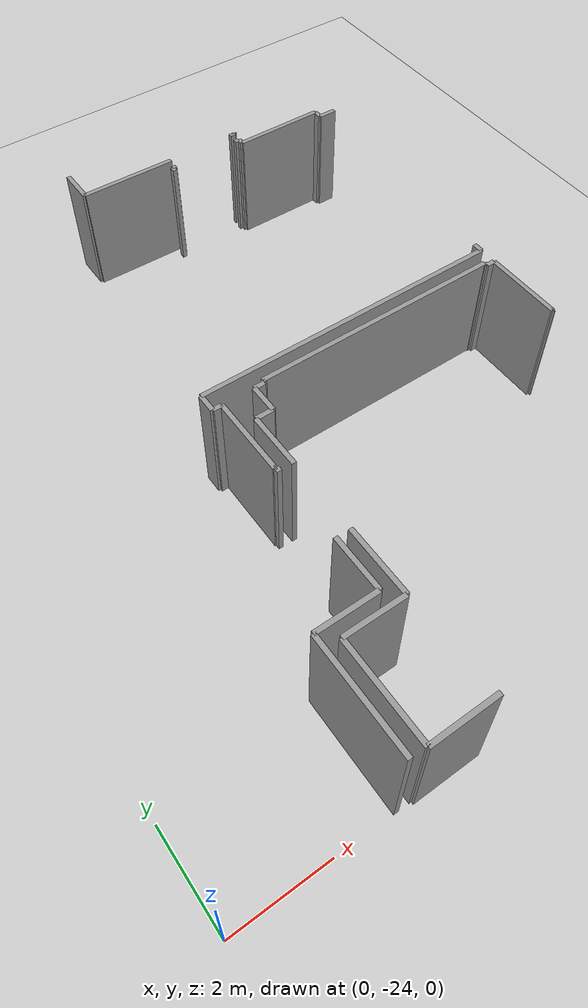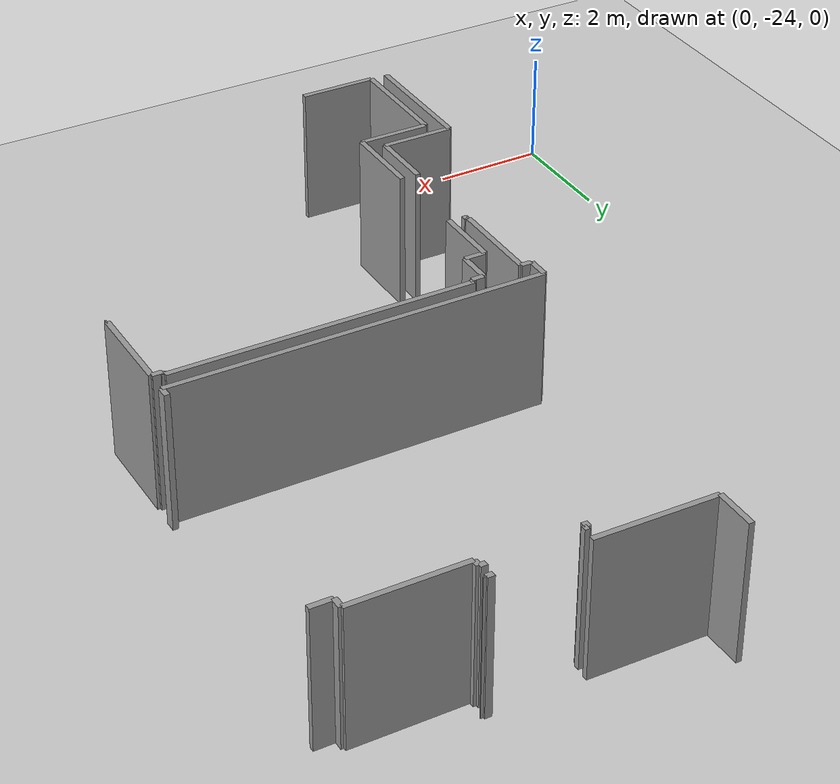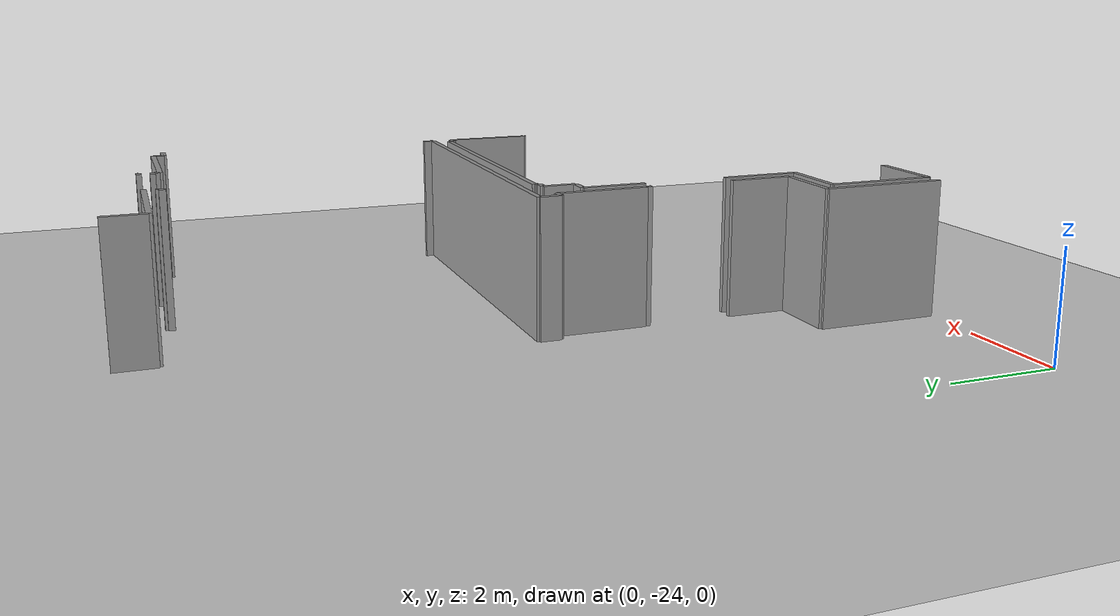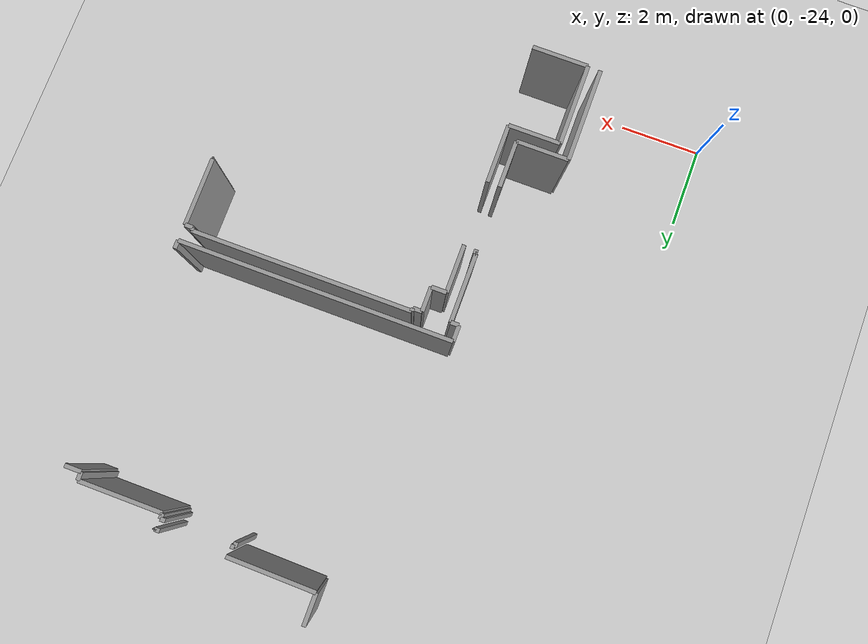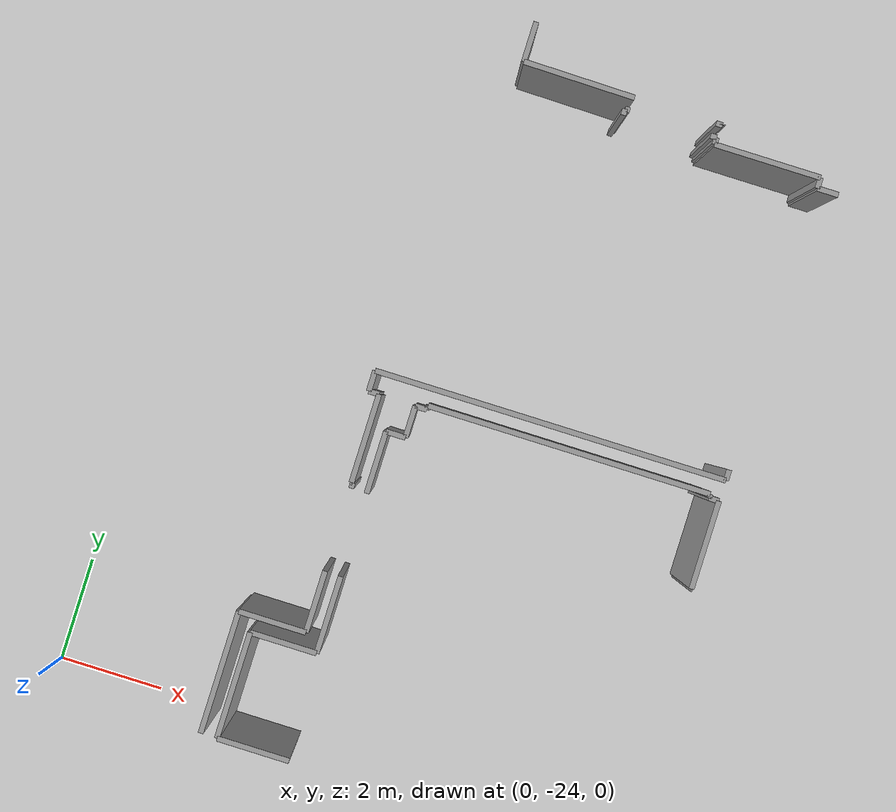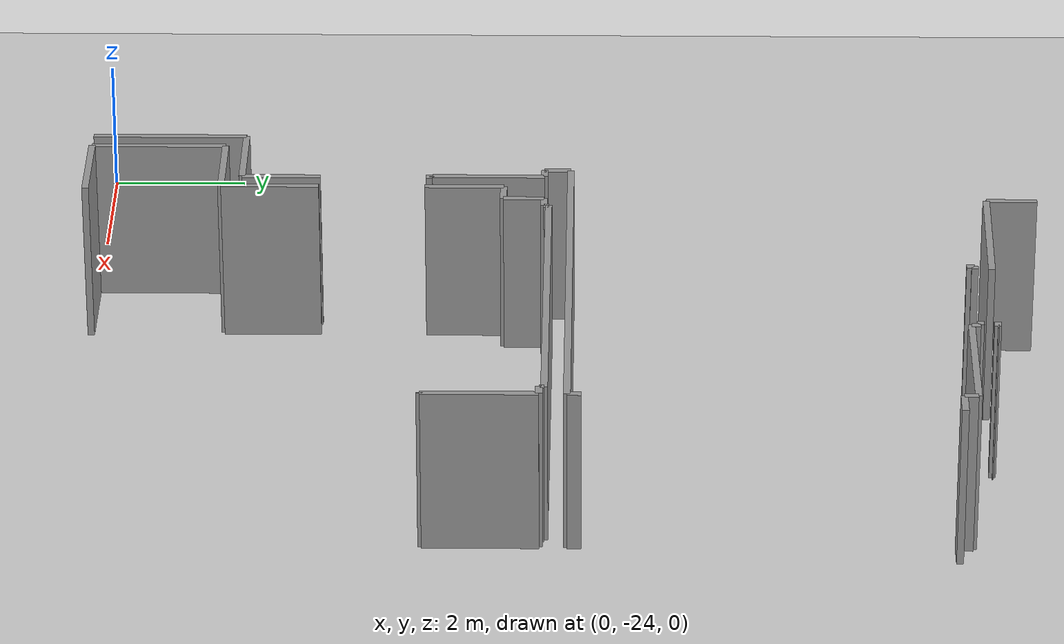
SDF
<sdf version="1.6">
 <world name="default">
  <model name="ground_plane">
   <static>1</static>
   <link name="link">
    <collision name="collision">
     <geometry><plane><normal>0 0 1</normal><size>100 100</size></plane></geometry>
     <surface><friction><ode><mu>100</mu><mu2>50</mu2></ode></friction></surface>
    </collision>
    <visual name="visual">
     <cast_shadows>0</cast_shadows>
     <geometry><plane><normal>0 0 1</normal><size>100 100</size></plane></geometry>
     <material>
      <script><uri>file://media/materials/scripts/gazebo.material</uri><name>Gazebo/Grey</name></script>
     </material>
    </visual>
   </link>
  </model>
  <model name="50055648">
   <static>1</static>
   <link name="Wall_131">
    <collision name="Wall_131_Collision">
     <geometry><box><size>0.119282021316 0.1 2.5</size></box></geometry>
     <pose>0.0596410106579 0 1.25 0 0 0</pose>
    </collision>
    <visual name="Wall_131_Visual">
     <pose>0.0596410106579 0 1.25 0 0 0</pose>
     <geometry><box><size>0.119282021316 0.1 2.5</size></box></geometry>
     <material>
      <script><uri>file://media/materials/scripts/gazebo.material</uri><name>Gazebo/Grey</name></script>
      <ambient>1 1 1 1</ambient>
     </material>
    </visual>
    <pose>24.272938606 -35.1791770938 0 0 0 1.57079632679</pose>
   </link>
   <link name="Wall_132">
    <collision name="Wall_132_Collision">
     <geometry><box><size>0.0872702328477 0.1 2.5</size></box></geometry>
     <pose>0.0436351164238 0 1.25 0 0 0</pose>
    </collision>
    <visual name="Wall_132_Visual">
     <pose>0.0436351164238 0 1.25 0 0 0</pose>
     <geometry><box><size>0.0872702328477 0.1 2.5</size></box></geometry>
     <material>
      <script><uri>file://media/materials/scripts/gazebo.material</uri><name>Gazebo/Grey</name></script>
      <ambient>1 1 1 1</ambient>
     </material>
    </visual>
    <pose>24.272938606 -35.0598950725 0 0 0 0.0</pose>
   </link>
   <link name="Wall_133">
    <collision name="Wall_133_Collision">
     <geometry><box><size>0.115598125024 0.1 2.5</size></box></geometry>
     <pose>0.0577990625119 0 1.25 0 0 0</pose>
    </collision>
    <visual name="Wall_133_Visual">
     <pose>0.0577990625119 0 1.25 0 0 0</pose>
     <geometry><box><size>0.115598125024 0.1 2.5</size></box></geometry>
     <material>
      <script><uri>file://media/materials/scripts/gazebo.material</uri><name>Gazebo/Grey</name></script>
      <ambient>1 1 1 1</ambient>
     </material>
    </visual>
    <pose>25.8848337801 -35.0598950725 0 0 0 0.0</pose>
   </link>
   <link name="Wall_134">
    <collision name="Wall_134_Collision">
     <geometry><box><size>0.131222926538 0.1 2.5</size></box></geometry>
     <pose>0.065611463269 0 1.25 0 0 0</pose>
    </collision>
    <visual name="Wall_134_Visual">
     <pose>0.065611463269 0 1.25 0 0 0</pose>
     <geometry><box><size>0.131222926538 0.1 2.5</size></box></geometry>
     <material>
      <script><uri>file://media/materials/scripts/gazebo.material</uri><name>Gazebo/Grey</name></script>
      <ambient>1 1 1 1</ambient>
     </material>
    </visual>
    <pose>26.0004319051 -35.0598950725 0 0 0 -1.57079632679</pose>
   </link>
   <link name="Wall_135">
    <collision name="Wall_135_Collision">
     <geometry><box><size>2.00378552102 0.1 2.5</size></box></geometry>
     <pose>1.00189276051 0 1.25 0 0 0</pose>
    </collision>
    <visual name="Wall_135_Visual">
     <pose>1.00189276051 0 1.25 0 0 0</pose>
     <geometry><box><size>2.00378552102 0.1 2.5</size></box></geometry>
     <material>
      <script><uri>file://media/materials/scripts/gazebo.material</uri><name>Gazebo/Grey</name></script>
      <ambient>1 1 1 1</ambient>
     </material>
    </visual>
    <pose>26.0004319051 -35.191117999 0 0 0 0.0</pose>
   </link>
   <link name="Wall_136">
    <collision name="Wall_136_Collision">
     <geometry><box><size>0.201343986992 0.1 2.5</size></box></geometry>
     <pose>0.100671993496 0 1.25 0 0 0</pose>
    </collision>
    <visual name="Wall_136_Visual">
     <pose>0.100671993496 0 1.25 0 0 0</pose>
     <geometry><box><size>0.201343986992 0.1 2.5</size></box></geometry>
     <material>
      <script><uri>file://media/materials/scripts/gazebo.material</uri><name>Gazebo/Grey</name></script>
      <ambient>1 1 1 1</ambient>
     </material>
    </visual>
    <pose>28.0042174261 -35.191117999 0 0 0 -1.57079632679</pose>
   </link>
   <link name="Wall_137">
    <collision name="Wall_137_Collision">
     <geometry><box><size>0.39646345956 0.1 2.5</size></box></geometry>
     <pose>0.19823172978 0 1.25 0 0 0</pose>
    </collision>
    <visual name="Wall_137_Visual">
     <pose>0.19823172978 0 1.25 0 0 0</pose>
     <geometry><box><size>0.39646345956 0.1 2.5</size></box></geometry>
     <material>
      <script><uri>file://media/materials/scripts/gazebo.material</uri><name>Gazebo/Grey</name></script>
      <ambient>1 1 1 1</ambient>
     </material>
    </visual>
    <pose>28.0042174261 -35.392461986 0 0 0 0.0</pose>
   </link>
   <link name="Wall_151">
    <collision name="Wall_151_Collision">
     <geometry><box><size>0.201852110619 0.1 2.5</size></box></geometry>
     <pose>0.100926055309 0 1.25 0 0 0</pose>
    </collision>
    <visual name="Wall_151_Visual">
     <pose>0.100926055309 0 1.25 0 0 0</pose>
     <geometry><box><size>0.201852110619 0.1 2.5</size></box></geometry>
     <material>
      <script><uri>file://media/materials/scripts/gazebo.material</uri><name>Gazebo/Grey</name></script>
      <ambient>1 1 1 1</ambient>
     </material>
    </visual>
    <pose>28.0042174261 -40.7061648099 0 0 0 -1.57079632679</pose>
   </link>
   <link name="Wall_152">
    <collision name="Wall_152_Collision">
     <geometry><box><size>6.61970757485 0.1 2.5</size></box></geometry>
     <pose>3.30985378743 0 1.25 0 0 0</pose>
    </collision>
    <visual name="Wall_152_Visual">
     <pose>3.30985378743 0 1.25 0 0 0</pose>
     <geometry><box><size>6.61970757485 0.1 2.5</size></box></geometry>
     <material>
      <script><uri>file://media/materials/scripts/gazebo.material</uri><name>Gazebo/Grey</name></script>
      <ambient>1 1 1 1</ambient>
     </material>
    </visual>
    <pose>28.0042174261 -40.9080169205 0 0 0 3.14159265359</pose>
   </link>
   <link name="Wall_153">
    <collision name="Wall_153_Collision">
     <geometry><box><size>0.38553880159 0.1 2.5</size></box></geometry>
     <pose>0.192769400795 0 1.25 0 0 0</pose>
    </collision>
    <visual name="Wall_153_Visual">
     <pose>0.192769400795 0 1.25 0 0 0</pose>
     <geometry><box><size>0.38553880159 0.1 2.5</size></box></geometry>
     <material>
      <script><uri>file://media/materials/scripts/gazebo.material</uri><name>Gazebo/Grey</name></script>
      <ambient>1 1 1 1</ambient>
     </material>
    </visual>
    <pose>21.3845098512 -40.9080169205 0 0 0 -1.57079632679</pose>
   </link>
   <link name="Wall_154">
    <collision name="Wall_154_Collision">
     <geometry><box><size>0.193849163501 0.1 2.5</size></box></geometry>
     <pose>0.0969245817507 0 1.25 0 0 0</pose>
    </collision>
    <visual name="Wall_154_Visual">
     <pose>0.0969245817507 0 1.25 0 0 0</pose>
     <geometry><box><size>0.193849163501 0.1 2.5</size></box></geometry>
     <material>
      <script><uri>file://media/materials/scripts/gazebo.material</uri><name>Gazebo/Grey</name></script>
      <ambient>1 1 1 1</ambient>
     </material>
    </visual>
    <pose>21.3845098512 -41.2935557221 0 0 0 0.0</pose>
   </link>
   <link name="Wall_155">
    <collision name="Wall_155_Collision">
     <geometry><box><size>1.66359675309 0.1 2.5</size></box></geometry>
     <pose>0.831798376545 0 1.25 0 0 0</pose>
    </collision>
    <visual name="Wall_155_Visual">
     <pose>0.831798376545 0 1.25 0 0 0</pose>
     <geometry><box><size>1.66359675309 0.1 2.5</size></box></geometry>
     <material>
      <script><uri>file://media/materials/scripts/gazebo.material</uri><name>Gazebo/Grey</name></script>
      <ambient>1 1 1 1</ambient>
     </material>
    </visual>
    <pose>21.5783590147 -41.2935557221 0 0 0 -1.57079632679</pose>
   </link>
   <link name="Wall_156">
    <collision name="Wall_156_Collision">
     <geometry><box><size>0.0247710267908 0.1 2.5</size></box></geometry>
     <pose>0.0123855133954 0 1.25 0 0 0</pose>
    </collision>
    <visual name="Wall_156_Visual">
     <pose>0.0123855133954 0 1.25 0 0 0</pose>
     <geometry><box><size>0.0247710267908 0.1 2.5</size></box></geometry>
     <material>
      <script><uri>file://media/materials/scripts/gazebo.material</uri><name>Gazebo/Grey</name></script>
      <ambient>1 1 1 1</ambient>
     </material>
    </visual>
    <pose>21.5783590147 -42.9571524752 0 0 0 0.0</pose>
   </link>
   <link name="Wall_157">
    <collision name="Wall_157_Collision">
     <geometry><box><size>0.100227385323 0.1 2.5</size></box></geometry>
     <pose>0.0501136926614 0 1.25 0 0 0</pose>
    </collision>
    <visual name="Wall_157_Visual">
     <pose>0.0501136926614 0 1.25 0 0 0</pose>
     <geometry><box><size>0.100227385323 0.1 2.5</size></box></geometry>
     <material>
      <script><uri>file://media/materials/scripts/gazebo.material</uri><name>Gazebo/Grey</name></script>
      <ambient>1 1 1 1</ambient>
     </material>
    </visual>
    <pose>21.6031300415 -42.9571524752 0 0 0 -1.57079632679</pose>
   </link>
   <link name="Wall_158">
    <collision name="Wall_158_Collision">
     <geometry><box><size>1.16042733197 0.1 2.5</size></box></geometry>
     <pose>0.580213665985 0 1.25 0 0 0</pose>
    </collision>
    <visual name="Wall_158_Visual">
     <pose>0.580213665985 0 1.25 0 0 0</pose>
     <geometry><box><size>1.16042733197 0.1 2.5</size></box></geometry>
     <material>
      <script><uri>file://media/materials/scripts/gazebo.material</uri><name>Gazebo/Grey</name></script>
      <ambient>1 1 1 1</ambient>
     </material>
    </visual>
    <pose>21.6031300415 -44.6216384446 0 0 0 -1.57079632679</pose>
   </link>
   <link name="Wall_159">
    <collision name="Wall_159_Collision">
     <geometry><box><size>1.2685306335 0.1 2.5</size></box></geometry>
     <pose>0.634265316752 0 1.25 0 0 0</pose>
    </collision>
    <visual name="Wall_159_Visual">
     <pose>0.634265316752 0 1.25 0 0 0</pose>
     <geometry><box><size>1.2685306335 0.1 2.5</size></box></geometry>
     <material>
      <script><uri>file://media/materials/scripts/gazebo.material</uri><name>Gazebo/Grey</name></script>
      <ambient>1 1 1 1</ambient>
     </material>
    </visual>
    <pose>21.6031300415 -45.7820657766 0 0 0 3.14159265359</pose>
   </link>
   <link name="Wall_160">
    <collision name="Wall_160_Collision">
     <geometry><box><size>2.29646472987 0.1 2.5</size></box></geometry>
     <pose>1.14823236493 0 1.25 0 0 0</pose>
    </collision>
    <visual name="Wall_160_Visual">
     <pose>1.14823236493 0 1.25 0 0 0</pose>
     <geometry><box><size>2.29646472987 0.1 2.5</size></box></geometry>
     <material>
      <script><uri>file://media/materials/scripts/gazebo.material</uri><name>Gazebo/Grey</name></script>
      <ambient>1 1 1 1</ambient>
     </material>
    </visual>
    <pose>20.334599408 -45.7820657766 0 0 0 -1.57079632679</pose>
   </link>
   <link name="Wall_231">
    <collision name="Wall_231_Collision">
     <geometry><box><size>0.74706876183 0.1 2.5</size></box></geometry>
     <pose>0.373534380915 0 1.25 0 0 0</pose>
    </collision>
    <visual name="Wall_231_Visual">
     <pose>0.373534380915 0 1.25 0 0 0</pose>
     <geometry><box><size>0.74706876183 0.1 2.5</size></box></geometry>
     <material>
      <script><uri>file://media/materials/scripts/gazebo.material</uri><name>Gazebo/Grey</name></script>
      <ambient>1 1 1 1</ambient>
     </material>
    </visual>
    <pose>22.2774100939 -34.7923679831 0 0 0 1.57079632679</pose>
   </link>
   <link name="Wall_240">
    <collision name="Wall_240_Collision">
     <geometry><box><size>0.0181654196466 0.1 2.5</size></box></geometry>
     <pose>0.0090827098233 0 1.25 0 0 0</pose>
    </collision>
    <visual name="Wall_240_Visual">
     <pose>0.0090827098233 0 1.25 0 0 0</pose>
     <geometry><box><size>0.0181654196466 0.1 2.5</size></box></geometry>
     <material>
      <script><uri>file://media/materials/scripts/gazebo.material</uri><name>Gazebo/Grey</name></script>
      <ambient>1 1 1 1</ambient>
     </material>
    </visual>
    <pose>26.0368897753 -34.8006249921 0 0 0 -1.57079632679</pose>
   </link>
   <link name="Wall_241">
    <collision name="Wall_241_Collision">
     <geometry><box><size>0.122711855795 0.1 2.5</size></box></geometry>
     <pose>0.0613559278973 0 1.25 0 0 0</pose>
    </collision>
    <visual name="Wall_241_Visual">
     <pose>0.0613559278973 0 1.25 0 0 0</pose>
     <geometry><box><size>0.122711855795 0.1 2.5</size></box></geometry>
     <material>
      <script><uri>file://media/materials/scripts/gazebo.material</uri><name>Gazebo/Grey</name></script>
      <ambient>1 1 1 1</ambient>
     </material>
    </visual>
    <pose>26.0368897753 -34.8187904117 0 0 0 3.14159265359</pose>
   </link>
   <link name="Wall_242">
    <collision name="Wall_242_Collision">
     <geometry><box><size>2.09897095219 0.1 2.5</size></box></geometry>
     <pose>1.04948547609 0 1.25 0 0 0</pose>
    </collision>
    <visual name="Wall_242_Visual">
     <pose>1.04948547609 0 1.25 0 0 0</pose>
     <geometry><box><size>2.09897095219 0.1 2.5</size></box></geometry>
     <material>
      <script><uri>file://media/materials/scripts/gazebo.material</uri><name>Gazebo/Grey</name></script>
      <ambient>1 1 1 1</ambient>
     </material>
    </visual>
    <pose>24.376214733 -34.8187904117 0 0 0 3.12900404371</pose>
   </link>
   <link name="Wall_243">
    <collision name="Wall_243_Collision">
     <geometry><box><size>1.364438968 0.1 2.5</size></box></geometry>
     <pose>0.682219484 0 1.25 0 0 0</pose>
    </collision>
    <visual name="Wall_243_Visual">
     <pose>0.682219484 0 1.25 0 0 0</pose>
     <geometry><box><size>1.364438968 0.1 2.5</size></box></geometry>
     <material>
      <script><uri>file://media/materials/scripts/gazebo.material</uri><name>Gazebo/Grey</name></script>
      <ambient>1 1 1 1</ambient>
     </material>
    </visual>
    <pose>22.0070883246 -48.0815792482 0 0 0 3.14159265359</pose>
   </link>
   <link name="Wall_244">
    <collision name="Wall_244_Collision">
     <geometry><box><size>2.00035568654 0.1 2.5</size></box></geometry>
     <pose>1.00017784327 0 1.25 0 0 0</pose>
    </collision>
    <visual name="Wall_244_Visual">
     <pose>1.00017784327 0 1.25 0 0 0</pose>
     <geometry><box><size>2.00035568654 0.1 2.5</size></box></geometry>
     <material>
      <script><uri>file://media/materials/scripts/gazebo.material</uri><name>Gazebo/Grey</name></script>
      <ambient>1 1 1 1</ambient>
     </material>
    </visual>
    <pose>20.6426493566 -48.0815792482 0 0 0 1.57079632679</pose>
   </link>
   <link name="Wall_245">
    <collision name="Wall_245_Collision">
     <geometry><box><size>1.2550653574 0.1 2.5</size></box></geometry>
     <pose>0.627532678701 0 1.25 0 0 0</pose>
    </collision>
    <visual name="Wall_245_Visual">
     <pose>0.627532678701 0 1.25 0 0 0</pose>
     <geometry><box><size>1.2550653574 0.1 2.5</size></box></geometry>
     <material>
      <script><uri>file://media/materials/scripts/gazebo.material</uri><name>Gazebo/Grey</name></script>
      <ambient>1 1 1 1</ambient>
     </material>
    </visual>
    <pose>20.6426493566 -46.0812235617 0 0 0 0.0</pose>
   </link>
   <link name="Wall_246">
    <collision name="Wall_246_Collision">
     <geometry><box><size>1.44827936637 0.1 2.5</size></box></geometry>
     <pose>0.724139683185 0 1.25 0 0 0</pose>
    </collision>
    <visual name="Wall_246_Visual">
     <pose>0.724139683185 0 1.25 0 0 0</pose>
     <geometry><box><size>1.44827936637 0.1 2.5</size></box></geometry>
     <material>
      <script><uri>file://media/materials/scripts/gazebo.material</uri><name>Gazebo/Grey</name></script>
      <ambient>1 1 1 1</ambient>
     </material>
    </visual>
    <pose>21.897714714 -46.0812235617 0 0 0 1.57079632679</pose>
   </link>
   <link name="Wall_247">
    <collision name="Wall_247_Collision">
     <geometry><box><size>1.16792215546 0.1 2.5</size></box></geometry>
     <pose>0.58396107773 0 1.25 0 0 0</pose>
    </collision>
    <visual name="Wall_247_Visual">
     <pose>0.58396107773 0 1.25 0 0 0</pose>
     <geometry><box><size>1.16792215546 0.1 2.5</size></box></geometry>
     <material>
      <script><uri>file://media/materials/scripts/gazebo.material</uri><name>Gazebo/Grey</name></script>
      <ambient>1 1 1 1</ambient>
     </material>
    </visual>
    <pose>21.897714714 -43.0629692204 0 0 0 1.57079632679</pose>
   </link>
   <link name="Wall_248">
    <collision name="Wall_248_Collision">
     <geometry><box><size>0.366230103784 0.1 2.5</size></box></geometry>
     <pose>0.183115051892 0 1.25 0 0 0</pose>
    </collision>
    <visual name="Wall_248_Visual">
     <pose>0.183115051892 0 1.25 0 0 0</pose>
     <geometry><box><size>0.366230103784 0.1 2.5</size></box></geometry>
     <material>
      <script><uri>file://media/materials/scripts/gazebo.material</uri><name>Gazebo/Grey</name></script>
      <ambient>1 1 1 1</ambient>
     </material>
    </visual>
    <pose>21.897714714 -41.895047065 0 0 0 0.0</pose>
   </link>
   <link name="Wall_249">
    <collision name="Wall_249_Collision">
     <geometry><box><size>0.595901982952 0.1 2.5</size></box></geometry>
     <pose>0.297950991476 0 1.25 0 0 0</pose>
    </collision>
    <visual name="Wall_249_Visual">
     <pose>0.297950991476 0 1.25 0 0 0</pose>
     <geometry><box><size>0.595901982952 0.1 2.5</size></box></geometry>
     <material>
      <script><uri>file://media/materials/scripts/gazebo.material</uri><name>Gazebo/Grey</name></script>
      <ambient>1 1 1 1</ambient>
     </material>
    </visual>
    <pose>22.2639448178 -41.895047065 0 0 0 1.57079632679</pose>
   </link>
   <link name="Wall_250">
    <collision name="Wall_250_Collision">
     <geometry><box><size>0.220271592078 0.1 2.5</size></box></geometry>
     <pose>0.110135796039 0 1.25 0 0 0</pose>
    </collision>
    <visual name="Wall_250_Visual">
     <pose>0.110135796039 0 1.25 0 0 0</pose>
     <geometry><box><size>0.220271592078 0.1 2.5</size></box></geometry>
     <material>
      <script><uri>file://media/materials/scripts/gazebo.material</uri><name>Gazebo/Grey</name></script>
      <ambient>1 1 1 1</ambient>
     </material>
    </visual>
    <pose>22.2639448178 -41.299145082 0 0 0 0.0</pose>
   </link>
   <link name="Wall_251">
    <collision name="Wall_251_Collision">
     <geometry><box><size>0.0721535549599 0.1 2.5</size></box></geometry>
     <pose>0.03607677748 0 1.25 0 0 0</pose>
    </collision>
    <visual name="Wall_251_Visual">
     <pose>0.03607677748 0 1.25 0 0 0</pose>
     <geometry><box><size>0.0721535549599 0.1 2.5</size></box></geometry>
     <material>
      <script><uri>file://media/materials/scripts/gazebo.material</uri><name>Gazebo/Grey</name></script>
      <ambient>1 1 1 1</ambient>
     </material>
    </visual>
    <pose>22.4842164099 -41.299145082 0 0 0 1.57079632679</pose>
   </link>
   <link name="Wall_252">
    <collision name="Wall_252_Collision">
     <geometry><box><size>5.32615185275 0.1 2.5</size></box></geometry>
     <pose>2.66307592637 0 1.25 0 0 0</pose>
    </collision>
    <visual name="Wall_252_Visual">
     <pose>2.66307592637 0 1.25 0 0 0</pose>
     <geometry><box><size>5.32615185275 0.1 2.5</size></box></geometry>
     <material>
      <script><uri>file://media/materials/scripts/gazebo.material</uri><name>Gazebo/Grey</name></script>
      <ambient>1 1 1 1</ambient>
     </material>
    </visual>
    <pose>22.4842164099 -41.226991527 0 0 0 0.0</pose>
   </link>
   <link name="Wall_253">
    <collision name="Wall_253_Collision">
     <geometry><box><size>0.0720265240533 0.1 2.5</size></box></geometry>
     <pose>0.0360132620266 0 1.25 0 0 0</pose>
    </collision>
    <visual name="Wall_253_Visual">
     <pose>0.0360132620266 0 1.25 0 0 0</pose>
     <geometry><box><size>0.0720265240533 0.1 2.5</size></box></geometry>
     <material>
      <script><uri>file://media/materials/scripts/gazebo.material</uri><name>Gazebo/Grey</name></script>
      <ambient>1 1 1 1</ambient>
     </material>
    </visual>
    <pose>27.8103682626 -41.226991527 0 0 0 -1.57079632679</pose>
   </link>
   <link name="Wall_254">
    <collision name="Wall_254_Collision">
     <geometry><box><size>0.185211061851 0.1 2.5</size></box></geometry>
     <pose>0.0926055309257 0 1.25 0 0 0</pose>
    </collision>
    <visual name="Wall_254_Visual">
     <pose>0.0926055309257 0 1.25 0 0 0</pose>
     <geometry><box><size>0.185211061851 0.1 2.5</size></box></geometry>
     <material>
      <script><uri>file://media/materials/scripts/gazebo.material</uri><name>Gazebo/Grey</name></script>
      <ambient>1 1 1 1</ambient>
     </material>
    </visual>
    <pose>27.8103682626 -41.2990180511 0 0 0 0.0</pose>
   </link>
   <link name="Wall_255">
    <collision name="Wall_255_Collision">
     <geometry><box><size>1.65915067136 0.1 2.5</size></box></geometry>
     <pose>0.829575335679 0 1.25 0 0 0</pose>
    </collision>
    <visual name="Wall_255_Visual">
     <pose>0.829575335679 0 1.25 0 0 0</pose>
     <geometry><box><size>1.65915067136 0.1 2.5</size></box></geometry>
     <material>
      <script><uri>file://media/materials/scripts/gazebo.material</uri><name>Gazebo/Grey</name></script>
      <ambient>1 1 1 1</ambient>
     </material>
    </visual>
    <pose>27.9955793244 -41.2990180511 0 0 0 -1.57079632679</pose>
   </link>
   <link name="Wall_256">
    <collision name="Wall_256_Collision">
     <geometry><box><size>0.0219763468452 0.1 2.5</size></box></geometry>
     <pose>0.0109881734226 0 1.25 0 0 0</pose>
    </collision>
    <visual name="Wall_256_Visual">
     <pose>0.0109881734226 0 1.25 0 0 0</pose>
     <geometry><box><size>0.0219763468452 0.1 2.5</size></box></geometry>
     <material>
      <script><uri>file://media/materials/scripts/gazebo.material</uri><name>Gazebo/Grey</name></script>
      <ambient>1 1 1 1</ambient>
     </material>
    </visual>
    <pose>27.9955793244 -42.9581687225 0 0 0 0.0</pose>
   </link>
   <pose>-17.15 24.0530474714 0 0 0 0</pose>
  </model>
 </world>
</sdf>
